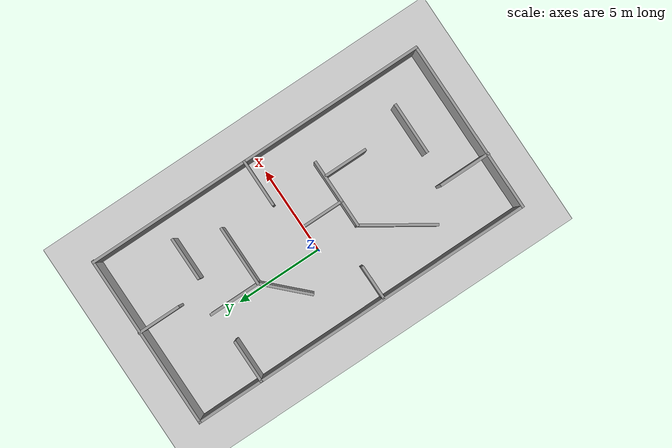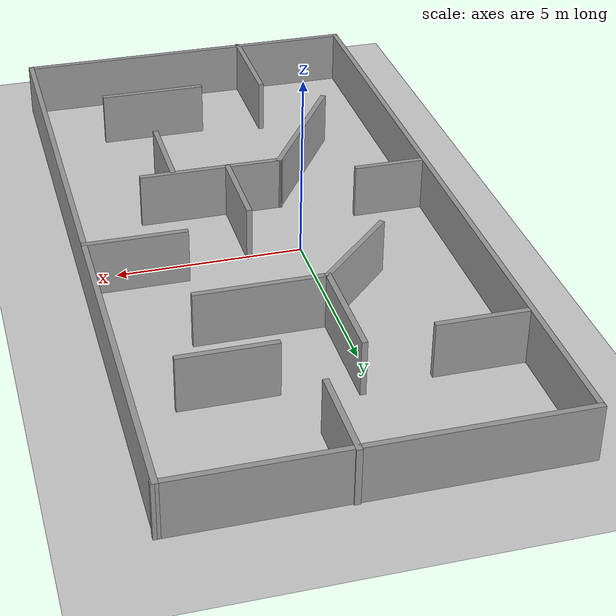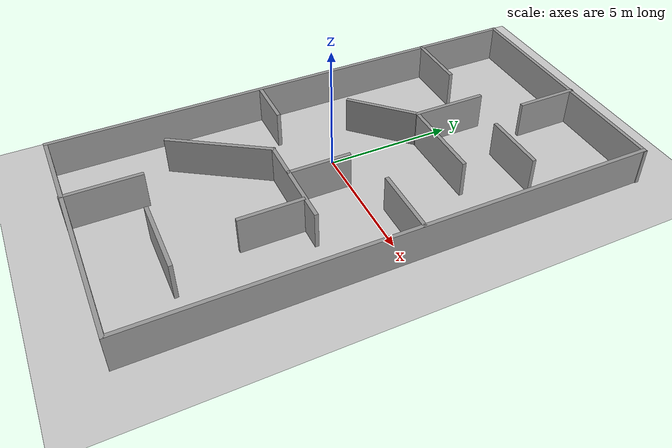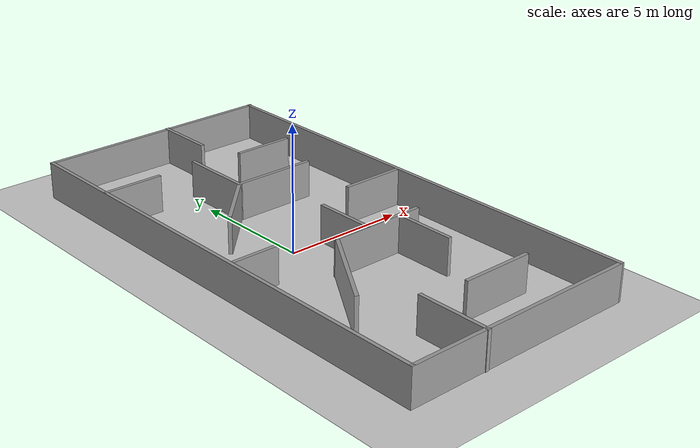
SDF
<sdf version="1.7">
 <world name="default">
  <plugin filename="gz-sim-physics-system" name="gz::sim::systems::Physics"/>
  <plugin filename="libgz-sim-sensors-system.so" name="gz::sim::systems::Sensors">
   <render_engine>ogre</render_engine>
  </plugin>
  <plugin filename="libgz-sim-user-commands-system.so" name="gz::sim::systems::UserCommands"/>
  <plugin filename="libgz-sim-scene-broadcaster-system.so" name="gz::sim::systems::SceneBroadcaster"/>
  <light name="sun" type="directional">
   <pose>0 0 10 0 -0 0</pose>
   <diffuse>0.8 0.8 0.8 1</diffuse>
   <specular>0.2 0.2 0.2 1</specular>
   <attenuation>
    <range>1000</range>
    <constant>0.9</constant>
    <linear>0.01</linear>
    <quadratic>0.001</quadratic>
   </attenuation>
   <direction>-0.5 0.1 -0.9</direction>
   <spot><inner_angle>0</inner_angle><outer_angle>0</outer_angle><falloff>0</falloff></spot>
  </light>
  <model name="ground_plane">
   <static>1</static>
   <link name="link">
    <collision name="collision">
     <geometry><plane><normal>0 0 1</normal><size>100 100</size></plane></geometry>
     <surface><friction><ode><mu>100</mu><mu2>50</mu2></ode></friction></surface>
    </collision>
    <visual name="visual">
     <cast_shadows>0</cast_shadows>
     <geometry><plane><normal>0 0 1</normal><size>100 100</size></plane></geometry>
     <material>
      <script><uri>file://media/materials/scripts/gazebo.material</uri><name>Gazebo/Grey</name></script>
     </material>
    </visual>
   </link>
  </model>
  <gravity>0 0 -9.8</gravity>
  <magnetic_field>6e-06 2.3e-05 -4.2e-05</magnetic_field>
  <atmosphere type="adiabatic"/>
  <physics type="ode">
   <max_step_size>0.001</max_step_size>
   <real_time_factor>1</real_time_factor>
   <real_time_update_rate>1000</real_time_update_rate>
  </physics>
  <scene><ambient>0.4 0.4 0.4 1</ambient><background>0.7 0.7 0.7 1</background><shadows>1</shadows></scene>
  <spherical_coordinates>
   <surface_model>EARTH_WGS84</surface_model>
   <latitude_deg>0</latitude_deg>
   <longitude_deg>0</longitude_deg>
   <elevation>0</elevation>
   <heading_deg>0</heading_deg>
  </spherical_coordinates>
  <model name="puzzle">
   <pose>1 0 0 0 -0 1.57</pose>
   <link name="Wall_0">
    <collision name="Wall_0_Collision">
     <geometry><box><size>20 0.15 1.5</size></box></geometry>
     <pose>0 0 0.75 0 -0 0</pose>
    </collision>
    <visual name="Wall_0_Visual">
     <pose>0 0 0.75 0 -0 0</pose>
     <geometry><box><size>20 0.15 1.5</size></box></geometry>
     <material>
      <script><uri>file://media/materials/scripts/gazebo.material</uri><name>Gazebo/Grey</name></script>
      <ambient>1 1 1 1</ambient>
     </material>
     <meta><layer>0</layer></meta>
    </visual>
    <pose>-0.003 -4.885 0 0 -0 -0.00131</pose>
   </link>
   <link name="Wall_10">
    <collision name="Wall_10_Collision">
     <geometry><box><size>3 0.15 1.5</size></box></geometry>
     <pose>0 0 0.75 0 -0 0</pose>
    </collision>
    <visual name="Wall_10_Visual">
     <pose>0 0 0.75 0 -0 0</pose>
     <geometry><box><size>3 0.15 1.5</size></box></geometry>
     <material>
      <script><uri>file://media/materials/scripts/gazebo.material</uri><name>Gazebo/Grey</name></script>
      <ambient>1 1 1 1</ambient>
     </material>
     <meta><layer>0</layer></meta>
    </visual>
    <pose>-8.533 1.712 0 0 -0 0</pose>
   </link>
   <link name="Wall_12">
    <collision name="Wall_12_Collision">
     <geometry><box><size>4.22942 0.15 1.5</size></box></geometry>
     <pose>0 0 0.75 0 -0 0</pose>
    </collision>
    <visual name="Wall_12_Visual">
     <pose>0 0 0.75 0 -0 0</pose>
     <geometry><box><size>4.22942 0.15 1.5</size></box></geometry>
     <material>
      <script><uri>file://media/materials/scripts/gazebo.material</uri><name>Gazebo/Grey</name></script>
      <ambient>1 1 1 1</ambient>
     </material>
     <meta><layer>0</layer></meta>
    </visual>
    <pose>-4.08 2.1565 0 0 -0 -0.583856</pose>
   </link>
   <link name="Wall_13">
    <collision name="Wall_13_Collision">
     <geometry><box><size>4 0.15 1.5</size></box></geometry>
     <pose>0 0 0.75 0 -0 0</pose>
    </collision>
    <visual name="Wall_13_Visual">
     <pose>0 0 0.75 0 -0 0</pose>
     <geometry><box><size>4 0.15 1.5</size></box></geometry>
     <material>
      <script><uri>file://media/materials/scripts/gazebo.material</uri><name>Gazebo/Grey</name></script>
      <ambient>1 1 1 1</ambient>
     </material>
     <meta><layer>0</layer></meta>
    </visual>
    <pose>-2.378 -0.893 0 0 -0 -1.5708</pose>
   </link>
   <link name="Wall_15">
    <collision name="Wall_15_Collision">
     <geometry><box><size>2.5 0.15 1.5</size></box></geometry>
     <pose>0 0 0.75 0 -0 0</pose>
    </collision>
    <visual name="Wall_15_Visual">
     <pose>0 0 0.75 0 -0 0</pose>
     <geometry><box><size>2.5 0.15 1.5</size></box></geometry>
     <material>
      <script><uri>file://media/materials/scripts/gazebo.material</uri><name>Gazebo/Grey</name></script>
      <ambient>1 1 1 1</ambient>
     </material>
     <meta><layer>0</layer></meta>
    </visual>
    <pose>-1.175 -0.443 0 0 -0 0</pose>
   </link>
   <link name="Wall_19">
    <collision name="Wall_19_Collision">
     <geometry><box><size>2.5 0.15 1.5</size></box></geometry>
     <pose>0 0 0.75 0 -0 0</pose>
    </collision>
    <visual name="Wall_19_Visual">
     <pose>0 0 0.75 0 -0 0</pose>
     <geometry><box><size>2.5 0.15 1.5</size></box></geometry>
     <material>
      <script><uri>file://media/materials/scripts/gazebo.material</uri><name>Gazebo/Grey</name></script>
      <ambient>1 1 1 1</ambient>
     </material>
     <meta><layer>0</layer></meta>
    </visual>
    <pose>-3.639 -1.965 0 0 -0 3.14159</pose>
   </link>
   <link name="Wall_21">
    <collision name="Wall_21_Collision">
     <geometry><box><size>3 0.15 1.5</size></box></geometry>
     <pose>0 0 0.75 0 -0 0</pose>
    </collision>
    <visual name="Wall_21_Visual">
     <pose>0 0 0.75 0 -0 0</pose>
     <geometry><box><size>3 0.15 1.5</size></box></geometry>
     <material>
      <script><uri>file://media/materials/scripts/gazebo.material</uri><name>Gazebo/Grey</name></script>
      <ambient>1 1 1 1</ambient>
     </material>
     <meta><layer>0</layer></meta>
    </visual>
    <pose>-7.415 -1.557 0 0 -0 -1.5708</pose>
   </link>
   <link name="Wall_24">
    <collision name="Wall_24_Collision">
     <geometry><box><size>2.75 0.15 1.5</size></box></geometry>
     <pose>0 0 0.75 0 -0 0</pose>
    </collision>
    <visual name="Wall_24_Visual">
     <pose>0 0 0.75 0 -0 0</pose>
     <geometry><box><size>2.75 0.15 1.5</size></box></geometry>
     <material>
      <script><uri>file://media/materials/scripts/gazebo.material</uri><name>Gazebo/Grey</name></script>
      <ambient>1 1 1 1</ambient>
     </material>
     <meta><layer>0</layer></meta>
    </visual>
    <pose>0.645 -3.575 0 0 -0 -1.5708</pose>
   </link>
   <link name="Wall_26">
    <collision name="Wall_26_Collision">
     <geometry><box><size>2 0.15 1.5</size></box></geometry>
     <pose>0 0 0.75 0 -0 0</pose>
    </collision>
    <visual name="Wall_26_Visual">
     <pose>0 0 0.75 0 -0 0</pose>
     <geometry><box><size>2 0.15 1.5</size></box></geometry>
     <material>
      <script><uri>file://media/materials/scripts/gazebo.material</uri><name>Gazebo/Grey</name></script>
      <ambient>1 1 1 1</ambient>
     </material>
     <meta><layer>0</layer></meta>
    </visual>
    <pose>-1.406 3.92 0 0 -0 -1.5708</pose>
   </link>
   <link name="Wall_28">
    <collision name="Wall_28_Collision">
     <geometry><box><size>3 0.15 1.5</size></box></geometry>
     <pose>0 0 0.75 0 -0 0</pose>
    </collision>
    <visual name="Wall_28_Visual">
     <pose>0 0 0.75 0 -0 0</pose>
     <geometry><box><size>3 0.15 1.5</size></box></geometry>
     <material>
      <script><uri>file://media/materials/scripts/gazebo.material</uri><name>Gazebo/Grey</name></script>
      <ambient>1 1 1 1</ambient>
     </material>
     <meta><layer>0</layer></meta>
    </visual>
    <pose>2.518 1.6855 0 0 -0 -0.78515</pose>
   </link>
   <link name="Wall_29">
    <collision name="Wall_29_Collision">
     <geometry><box><size>3.5 0.15 1.5</size></box></geometry>
     <pose>0 0 0.75 0 -0 0</pose>
    </collision>
    <visual name="Wall_29_Visual">
     <pose>0 0 0.75 0 -0 0</pose>
     <geometry><box><size>3.5 0.15 1.5</size></box></geometry>
     <material>
      <script><uri>file://media/materials/scripts/gazebo.material</uri><name>Gazebo/Grey</name></script>
      <ambient>1 1 1 1</ambient>
     </material>
     <meta><layer>0</layer></meta>
    </visual>
    <pose>3.526 -0.997 0 0 -0 -1.5708</pose>
   </link>
   <link name="Wall_31">
    <collision name="Wall_31_Collision">
     <geometry><box><size>3 0.15 1.5</size></box></geometry>
     <pose>0 0 0.75 0 -0 0</pose>
    </collision>
    <visual name="Wall_31_Visual">
     <pose>0 0 0.75 0 -0 0</pose>
     <geometry><box><size>3 0.15 1.5</size></box></geometry>
     <material>
      <script><uri>file://media/materials/scripts/gazebo.material</uri><name>Gazebo/Grey</name></script>
      <ambient>1 1 1 1</ambient>
     </material>
     <meta><layer>0</layer></meta>
    </visual>
    <pose>4.951 0.678 0 0 -0 0</pose>
   </link>
   <link name="Wall_34">
    <collision name="Wall_34_Collision">
     <geometry><box><size>2.5 0.15 1.5</size></box></geometry>
     <pose>0 0 0.75 0 -0 0</pose>
    </collision>
    <visual name="Wall_34_Visual">
     <pose>0 0 0.75 0 -0 0</pose>
     <geometry><box><size>2.5 0.15 1.5</size></box></geometry>
     <material>
      <script><uri>file://media/materials/scripts/gazebo.material</uri><name>Gazebo/Grey</name></script>
      <ambient>1 1 1 1</ambient>
     </material>
     <meta><layer>0</layer></meta>
    </visual>
    <pose>5.915 -2.424 0 0 -0 -1.5708</pose>
   </link>
   <link name="Wall_36">
    <collision name="Wall_36_Collision">
     <geometry><box><size>2.5 0.15 1.5</size></box></geometry>
     <pose>0 0 0.75 0 -0 0</pose>
    </collision>
    <visual name="Wall_36_Visual">
     <pose>0 0 0.75 0 -0 0</pose>
     <geometry><box><size>2.5 0.15 1.5</size></box></geometry>
     <material>
      <script><uri>file://media/materials/scripts/gazebo.material</uri><name>Gazebo/Grey</name></script>
      <ambient>1 1 1 1</ambient>
     </material>
     <meta><layer>0</layer></meta>
    </visual>
    <pose>8.783 -0.586 0 0 -0 3.14159</pose>
   </link>
   <link name="Wall_38">
    <collision name="Wall_38_Collision">
     <geometry><box><size>2.5 0.15 1.5</size></box></geometry>
     <pose>0 0 0.75 0 -0 0</pose>
    </collision>
    <visual name="Wall_38_Visual">
     <pose>0 0 0.75 0 -0 0</pose>
     <geometry><box><size>2.5 0.15 1.5</size></box></geometry>
     <material>
      <script><uri>file://media/materials/scripts/gazebo.material</uri><name>Gazebo/Grey</name></script>
      <ambient>1 1 1 1</ambient>
     </material>
     <meta><layer>0</layer></meta>
    </visual>
    <pose>6.157 3.73 0 0 -0 -1.5708</pose>
   </link>
   <link name="Wall_4">
    <collision name="Wall_4_Collision">
     <geometry><box><size>9.9468 0.15 1.5</size></box></geometry>
     <pose>0 0 0.75 0 -0 0</pose>
    </collision>
    <visual name="Wall_4_Visual">
     <pose>0 0 0.75 0 -0 0</pose>
     <geometry><box><size>9.9468 0.15 1.5</size></box></geometry>
     <material>
      <script><uri>file://media/materials/scripts/gazebo.material</uri><name>Gazebo/Grey</name></script>
      <ambient>1 1 1 1</ambient>
     </material>
     <meta><layer>0</layer></meta>
    </visual>
    <pose>-9.928 0.0265 0 0 -0 1.5708</pose>
   </link>
   <link name="Wall_7">
    <collision name="Wall_7_Collision">
     <geometry><box><size>20 0.15 1.5</size></box></geometry>
     <pose>0 0 0.75 0 -0 0</pose>
    </collision>
    <visual name="Wall_7_Visual">
     <pose>0 0 0.75 0 -0 0</pose>
     <geometry><box><size>20 0.15 1.5</size></box></geometry>
     <material>
      <script><uri>file://media/materials/scripts/gazebo.material</uri><name>Gazebo/Grey</name></script>
      <ambient>1 1 1 1</ambient>
     </material>
     <meta><layer>0</layer></meta>
    </visual>
    <pose>-0.003 4.925 0 0 -0 0</pose>
   </link>
   <link name="Wall_8">
    <collision name="Wall_8_Collision">
     <geometry><box><size>10 0.15 1.5</size></box></geometry>
     <pose>0 0 0.75 0 -0 0</pose>
    </collision>
    <visual name="Wall_8_Visual">
     <pose>0 0 0.75 0 -0 0</pose>
     <geometry><box><size>10 0.15 1.5</size></box></geometry>
     <material>
      <script><uri>file://media/materials/scripts/gazebo.material</uri><name>Gazebo/Grey</name></script>
      <ambient>1 1 1 1</ambient>
     </material>
     <meta><layer>0</layer></meta>
    </visual>
    <pose>9.922 0 0 0 -0 -1.5708</pose>
   </link>
   <static>1</static>
  </model>
 </world>
</sdf>
